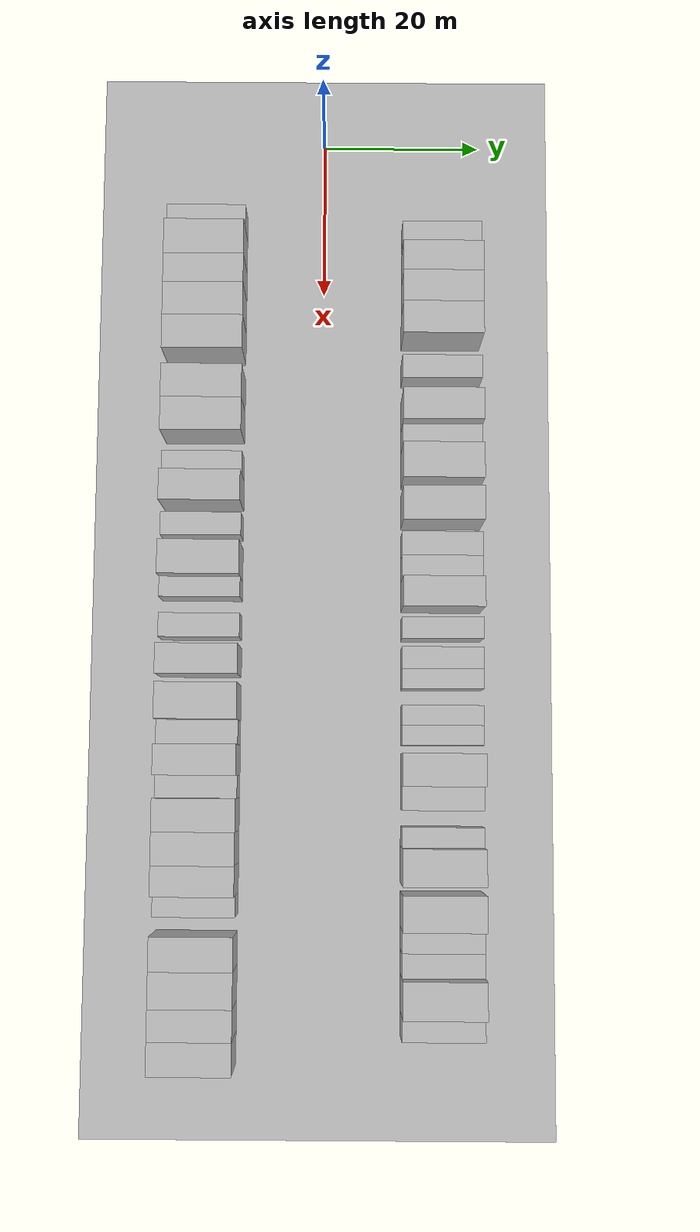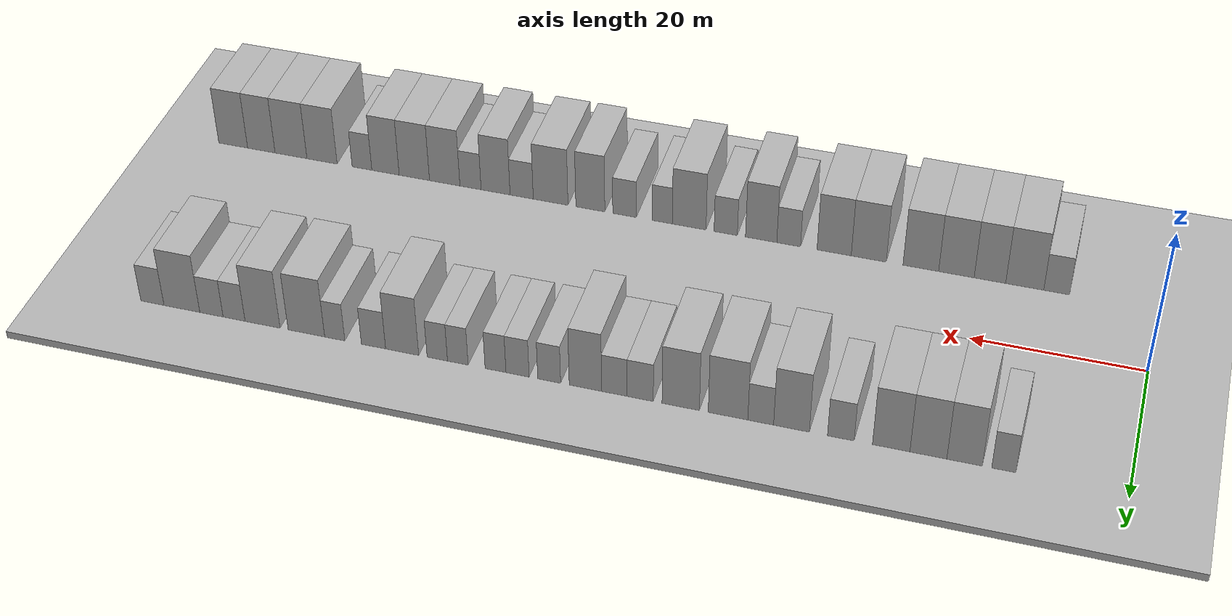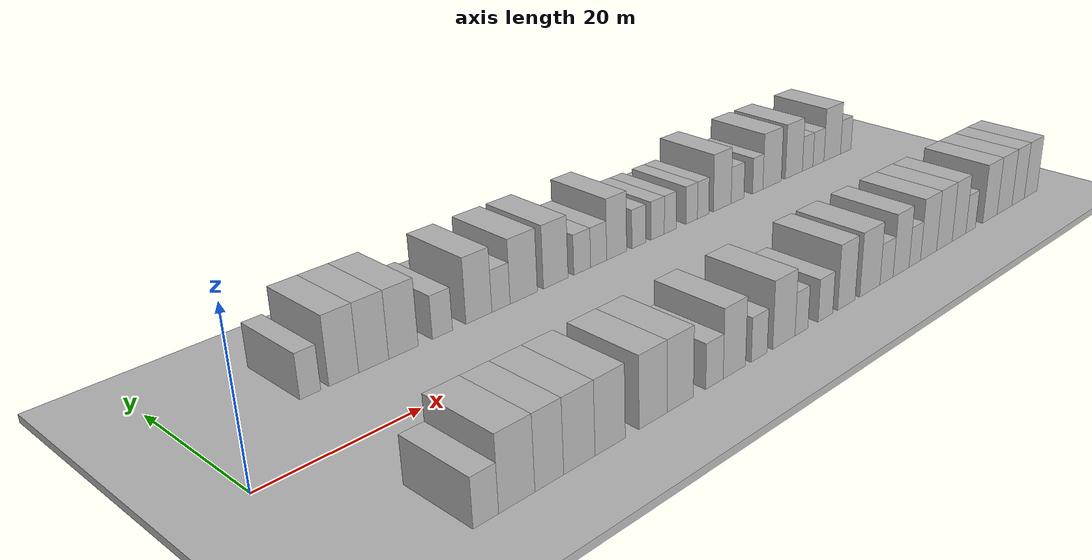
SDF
<sdf version="1.6">
 <world name="default">
  <include><name>ground_plane_1</name><uri>model://HANNAS_ground_plane</uri></include>
  <include>
   <name>ground_plane_2</name>
   <uri>model://HANNAS_ground_plane</uri>
   <pose>100 0 0  0 0 0</pose>
  </include>
  <model name="building_1">
   <static>1</static>
   <pose>13.2862 15.0000 0 0.000000 0.000000 1.570796</pose>
   <link name="link">
    <pose>0 0 3.00 0 0 0</pose>
    <collision name="collision"><geometry><box><size>10.0000 2.5724 6.0000</size></box></geometry></collision>
    <visual name="visual">
     <cast_shadows>0</cast_shadows>
     <geometry><box><size>10.0000 2.5724 6.0000</size></box></geometry>
     <material>
      <script>
       <uri>model://HANNAS_wall/materials/scripts</uri>
       <uri>model://HANNAS_wall/materials/textures</uri>
       <name>vrc/HANNAS_wall</name>
      </script>
     </material>
    </visual>
   </link>
  </model>
  <model name="building_2">
   <static>1</static>
   <pose>17.4752 15.0000 0 0.000000 0.000000 1.570796</pose>
   <link name="link">
    <pose>0 0 4.50 0 0 0</pose>
    <collision name="collision"><geometry><box><size>10.0000 3.8055 9.0000</size></box></geometry></collision>
    <visual name="visual">
     <cast_shadows>0</cast_shadows>
     <geometry><box><size>10.0000 3.8055 9.0000</size></box></geometry>
     <material>
      <script>
       <uri>model://HANNAS_wall/materials/scripts</uri>
       <uri>model://HANNAS_wall/materials/textures</uri>
       <name>vrc/HANNAS_wall</name>
      </script>
     </material>
    </visual>
   </link>
  </model>
  <model name="building_3">
   <static>1</static>
   <pose>21.3710 15.0000 0 0.000000 0.000000 1.570796</pose>
   <link name="link">
    <pose>0 0 4.50 0 0 0</pose>
    <collision name="collision"><geometry><box><size>10.0000 3.9862 9.0000</size></box></geometry></collision>
    <visual name="visual">
     <cast_shadows>0</cast_shadows>
     <geometry><box><size>10.0000 3.9862 9.0000</size></box></geometry>
     <material>
      <script>
       <uri>model://HANNAS_wall/materials/scripts</uri>
       <uri>model://HANNAS_wall/materials/textures</uri>
       <name>vrc/HANNAS_wall</name>
      </script>
     </material>
    </visual>
   </link>
  </model>
  <model name="building_4">
   <static>1</static>
   <pose>25.3962 15.0000 0 0.000000 0.000000 1.570796</pose>
   <link name="link">
    <pose>0 0 4.50 0 0 0</pose>
    <collision name="collision"><geometry><box><size>10.0000 4.0641 9.0000</size></box></geometry></collision>
    <visual name="visual">
     <cast_shadows>0</cast_shadows>
     <geometry><box><size>10.0000 4.0641 9.0000</size></box></geometry>
     <material>
      <script>
       <uri>model://HANNAS_wall/materials/scripts</uri>
       <uri>model://HANNAS_wall/materials/textures</uri>
       <name>vrc/HANNAS_wall</name>
      </script>
     </material>
    </visual>
   </link>
  </model>
  <model name="building_5">
   <static>1</static>
   <pose>30.8911 15.0000 0 0.000000 0.000000 1.570796</pose>
   <link name="link">
    <pose>0 0 3.00 0 0 0</pose>
    <collision name="collision"><geometry><box><size>10.0000 2.9257 6.0000</size></box></geometry></collision>
    <visual name="visual">
     <cast_shadows>0</cast_shadows>
     <geometry><box><size>10.0000 2.9257 6.0000</size></box></geometry>
     <material>
      <script>
       <uri>model://HANNAS_wall/materials/scripts</uri>
       <uri>model://HANNAS_wall/materials/textures</uri>
       <name>vrc/HANNAS_wall</name>
      </script>
     </material>
    </visual>
   </link>
  </model>
  <model name="building_6">
   <static>1</static>
   <pose>36.3340 15.0000 0 0.000000 0.000000 1.570796</pose>
   <link name="link">
    <pose>0 0 4.50 0 0 0</pose>
    <collision name="collision"><geometry><box><size>10.0000 3.9601 9.0000</size></box></geometry></collision>
    <visual name="visual">
     <cast_shadows>0</cast_shadows>
     <geometry><box><size>10.0000 3.9601 9.0000</size></box></geometry>
     <material>
      <script>
       <uri>model://HANNAS_wall/materials/scripts</uri>
       <uri>model://HANNAS_wall/materials/textures</uri>
       <name>vrc/HANNAS_wall</name>
      </script>
     </material>
    </visual>
   </link>
  </model>
  <model name="building_7">
   <static>1</static>
   <pose>39.7516 15.0000 0 0.000000 0.000000 1.570796</pose>
   <link name="link">
    <pose>0 0 3.00 0 0 0</pose>
    <collision name="collision"><geometry><box><size>10.0000 2.8751 6.0000</size></box></geometry></collision>
    <visual name="visual">
     <cast_shadows>0</cast_shadows>
     <geometry><box><size>10.0000 2.8751 6.0000</size></box></geometry>
     <material>
      <script>
       <uri>model://HANNAS_wall/materials/scripts</uri>
       <uri>model://HANNAS_wall/materials/textures</uri>
       <name>vrc/HANNAS_wall</name>
      </script>
     </material>
    </visual>
   </link>
  </model>
  <model name="building_8">
   <static>1</static>
   <pose>43.4057 15.0000 0 0.000000 0.000000 1.570796</pose>
   <link name="link">
    <pose>0 0 4.50 0 0 0</pose>
    <collision name="collision"><geometry><box><size>10.0000 4.4330 9.0000</size></box></geometry></collision>
    <visual name="visual">
     <cast_shadows>0</cast_shadows>
     <geometry><box><size>10.0000 4.4330 9.0000</size></box></geometry>
     <material>
      <script>
       <uri>model://HANNAS_wall/materials/scripts</uri>
       <uri>model://HANNAS_wall/materials/textures</uri>
       <name>vrc/HANNAS_wall</name>
      </script>
     </material>
    </visual>
   </link>
  </model>
  <model name="building_9">
   <static>1</static>
   <pose>48.7348 15.0000 0 0.000000 0.000000 1.570796</pose>
   <link name="link">
    <pose>0 0 4.50 0 0 0</pose>
    <collision name="collision"><geometry><box><size>10.0000 4.2253 9.0000</size></box></geometry></collision>
    <visual name="visual">
     <cast_shadows>0</cast_shadows>
     <geometry><box><size>10.0000 4.2253 9.0000</size></box></geometry>
     <material>
      <script>
       <uri>model://HANNAS_wall/materials/scripts</uri>
       <uri>model://HANNAS_wall/materials/textures</uri>
       <name>vrc/HANNAS_wall</name>
      </script>
     </material>
    </visual>
   </link>
  </model>
  <model name="building_10">
   <static>1</static>
   <pose>53.3366 15.0000 0 0.000000 0.000000 1.570796</pose>
   <link name="link">
    <pose>0 0 3.00 0 0 0</pose>
    <collision name="collision"><geometry><box><size>10.0000 2.9783 6.0000</size></box></geometry></collision>
    <visual name="visual">
     <cast_shadows>0</cast_shadows>
     <geometry><box><size>10.0000 2.9783 6.0000</size></box></geometry>
     <material>
      <script>
       <uri>model://HANNAS_wall/materials/scripts</uri>
       <uri>model://HANNAS_wall/materials/textures</uri>
       <name>vrc/HANNAS_wall</name>
      </script>
     </material>
    </visual>
   </link>
  </model>
  <model name="building_11">
   <static>1</static>
   <pose>56.2876 15.0000 0 0.000000 0.000000 1.570796</pose>
   <link name="link">
    <pose>0 0 3.00 0 0 0</pose>
    <collision name="collision"><geometry><box><size>10.0000 2.9236 6.0000</size></box></geometry></collision>
    <visual name="visual">
     <cast_shadows>0</cast_shadows>
     <geometry><box><size>10.0000 2.9236 6.0000</size></box></geometry>
     <material>
      <script>
       <uri>model://HANNAS_wall/materials/scripts</uri>
       <uri>model://HANNAS_wall/materials/textures</uri>
       <name>vrc/HANNAS_wall</name>
      </script>
     </material>
    </visual>
   </link>
  </model>
  <model name="building_12">
   <static>1</static>
   <pose>59.6168 15.0000 0 0.000000 0.000000 1.570796</pose>
   <link name="link">
    <pose>0 0 4.50 0 0 0</pose>
    <collision name="collision"><geometry><box><size>10.0000 3.7350 9.0000</size></box></geometry></collision>
    <visual name="visual">
     <cast_shadows>0</cast_shadows>
     <geometry><box><size>10.0000 3.7350 9.0000</size></box></geometry>
     <material>
      <script>
       <uri>model://HANNAS_wall/materials/scripts</uri>
       <uri>model://HANNAS_wall/materials/textures</uri>
       <name>vrc/HANNAS_wall</name>
      </script>
     </material>
    </visual>
   </link>
  </model>
  <model name="building_13">
   <static>1</static>
   <pose>63.8142 15.0000 0 0.000000 0.000000 1.570796</pose>
   <link name="link">
    <pose>0 0 3.00 0 0 0</pose>
    <collision name="collision"><geometry><box><size>10.0000 2.6598 6.0000</size></box></geometry></collision>
    <visual name="visual">
     <cast_shadows>0</cast_shadows>
     <geometry><box><size>10.0000 2.6598 6.0000</size></box></geometry>
     <material>
      <script>
       <uri>model://HANNAS_wall/materials/scripts</uri>
       <uri>model://HANNAS_wall/materials/textures</uri>
       <name>vrc/HANNAS_wall</name>
      </script>
     </material>
    </visual>
   </link>
  </model>
  <model name="building_14">
   <static>1</static>
   <pose>67.4996 15.0000 0 0.000000 0.000000 1.570796</pose>
   <link name="link">
    <pose>0 0 3.00 0 0 0</pose>
    <collision name="collision"><geometry><box><size>10.0000 2.7109 6.0000</size></box></geometry></collision>
    <visual name="visual">
     <cast_shadows>0</cast_shadows>
     <geometry><box><size>10.0000 2.7109 6.0000</size></box></geometry>
     <material>
      <script>
       <uri>model://HANNAS_wall/materials/scripts</uri>
       <uri>model://HANNAS_wall/materials/textures</uri>
       <name>vrc/HANNAS_wall</name>
      </script>
     </material>
    </visual>
   </link>
  </model>
  <model name="building_15">
   <static>1</static>
   <pose>70.0767 15.0000 0 0.000000 0.000000 1.570796</pose>
   <link name="link">
    <pose>0 0 3.00 0 0 0</pose>
    <collision name="collision"><geometry><box><size>10.0000 2.4434 6.0000</size></box></geometry></collision>
    <visual name="visual">
     <cast_shadows>0</cast_shadows>
     <geometry><box><size>10.0000 2.4434 6.0000</size></box></geometry>
     <material>
      <script>
       <uri>model://HANNAS_wall/materials/scripts</uri>
       <uri>model://HANNAS_wall/materials/textures</uri>
       <name>vrc/HANNAS_wall</name>
      </script>
     </material>
    </visual>
   </link>
  </model>
  <model name="building_16">
   <static>1</static>
   <pose>74.5183 15.0000 0 0.000000 0.000000 1.570796</pose>
   <link name="link">
    <pose>0 0 3.00 0 0 0</pose>
    <collision name="collision"><geometry><box><size>10.0000 2.4397 6.0000</size></box></geometry></collision>
    <visual name="visual">
     <cast_shadows>0</cast_shadows>
     <geometry><box><size>10.0000 2.4397 6.0000</size></box></geometry>
     <material>
      <script>
       <uri>model://HANNAS_wall/materials/scripts</uri>
       <uri>model://HANNAS_wall/materials/textures</uri>
       <name>vrc/HANNAS_wall</name>
      </script>
     </material>
    </visual>
   </link>
  </model>
  <model name="building_17">
   <static>1</static>
   <pose>76.9490 15.0000 0 0.000000 0.000000 1.570796</pose>
   <link name="link">
    <pose>0 0 3.00 0 0 0</pose>
    <collision name="collision"><geometry><box><size>10.0000 2.4216 6.0000</size></box></geometry></collision>
    <visual name="visual">
     <cast_shadows>0</cast_shadows>
     <geometry><box><size>10.0000 2.4216 6.0000</size></box></geometry>
     <material>
      <script>
       <uri>model://HANNAS_wall/materials/scripts</uri>
       <uri>model://HANNAS_wall/materials/textures</uri>
       <name>vrc/HANNAS_wall</name>
      </script>
     </material>
    </visual>
   </link>
  </model>
  <model name="building_18">
   <static>1</static>
   <pose>81.1411 15.0000 0 0.000000 0.000000 1.570796</pose>
   <link name="link">
    <pose>0 0 4.50 0 0 0</pose>
    <collision name="collision"><geometry><box><size>10.0000 3.9626 9.0000</size></box></geometry></collision>
    <visual name="visual">
     <cast_shadows>0</cast_shadows>
     <geometry><box><size>10.0000 3.9626 9.0000</size></box></geometry>
     <material>
      <script>
       <uri>model://HANNAS_wall/materials/scripts</uri>
       <uri>model://HANNAS_wall/materials/textures</uri>
       <name>vrc/HANNAS_wall</name>
      </script>
     </material>
    </visual>
   </link>
  </model>
  <model name="building_19">
   <static>1</static>
   <pose>84.5773 15.0000 0 0.000000 0.000000 1.570796</pose>
   <link name="link">
    <pose>0 0 3.00 0 0 0</pose>
    <collision name="collision"><geometry><box><size>10.0000 2.9098 6.0000</size></box></geometry></collision>
    <visual name="visual">
     <cast_shadows>0</cast_shadows>
     <geometry><box><size>10.0000 2.9098 6.0000</size></box></geometry>
     <material>
      <script>
       <uri>model://HANNAS_wall/materials/scripts</uri>
       <uri>model://HANNAS_wall/materials/textures</uri>
       <name>vrc/HANNAS_wall</name>
      </script>
     </material>
    </visual>
   </link>
  </model>
  <model name="building_20">
   <static>1</static>
   <pose>89.2566 15.0000 0 0.000000 0.000000 1.570796</pose>
   <link name="link">
    <pose>0 0 3.00 0 0 0</pose>
    <collision name="collision"><geometry><box><size>10.0000 2.4487 6.0000</size></box></geometry></collision>
    <visual name="visual">
     <cast_shadows>0</cast_shadows>
     <geometry><box><size>10.0000 2.4487 6.0000</size></box></geometry>
     <material>
      <script>
       <uri>model://HANNAS_wall/materials/scripts</uri>
       <uri>model://HANNAS_wall/materials/textures</uri>
       <name>vrc/HANNAS_wall</name>
      </script>
     </material>
    </visual>
   </link>
  </model>
  <model name="building_21">
   <static>1</static>
   <pose>92.7052 15.0000 0 0.000000 0.000000 1.570796</pose>
   <link name="link">
    <pose>0 0 4.50 0 0 0</pose>
    <collision name="collision"><geometry><box><size>10.0000 4.4486 9.0000</size></box></geometry></collision>
    <visual name="visual">
     <cast_shadows>0</cast_shadows>
     <geometry><box><size>10.0000 4.4486 9.0000</size></box></geometry>
     <material>
      <script>
       <uri>model://HANNAS_wall/materials/scripts</uri>
       <uri>model://HANNAS_wall/materials/textures</uri>
       <name>vrc/HANNAS_wall</name>
      </script>
     </material>
    </visual>
   </link>
  </model>
  <model name="building_22">
   <static>1</static>
   <pose>98.0822 15.0000 0 0.000000 0.000000 1.570796</pose>
   <link name="link">
    <pose>0 0 4.50 0 0 0</pose>
    <collision name="collision"><geometry><box><size>10.0000 4.3055 9.0000</size></box></geometry></collision>
    <visual name="visual">
     <cast_shadows>0</cast_shadows>
     <geometry><box><size>10.0000 4.3055 9.0000</size></box></geometry>
     <material>
      <script>
       <uri>model://HANNAS_wall/materials/scripts</uri>
       <uri>model://HANNAS_wall/materials/textures</uri>
       <name>vrc/HANNAS_wall</name>
      </script>
     </material>
    </visual>
   </link>
  </model>
  <model name="building_23">
   <static>1</static>
   <pose>101.5895 15.0000 0 0.000000 0.000000 1.570796</pose>
   <link name="link">
    <pose>0 0 3.00 0 0 0</pose>
    <collision name="collision"><geometry><box><size>10.0000 2.7089 6.0000</size></box></geometry></collision>
    <visual name="visual">
     <cast_shadows>0</cast_shadows>
     <geometry><box><size>10.0000 2.7089 6.0000</size></box></geometry>
     <material>
      <script>
       <uri>model://HANNAS_wall/materials/scripts</uri>
       <uri>model://HANNAS_wall/materials/textures</uri>
       <name>vrc/HANNAS_wall</name>
      </script>
     </material>
    </visual>
   </link>
  </model>
  <model name="building_24">
   <static>1</static>
   <pose>104.3950 15.0000 0 0.000000 0.000000 1.570796</pose>
   <link name="link">
    <pose>0 0 3.00 0 0 0</pose>
    <collision name="collision"><geometry><box><size>10.0000 2.9022 6.0000</size></box></geometry></collision>
    <visual name="visual">
     <cast_shadows>0</cast_shadows>
     <geometry><box><size>10.0000 2.9022 6.0000</size></box></geometry>
     <material>
      <script>
       <uri>model://HANNAS_wall/materials/scripts</uri>
       <uri>model://HANNAS_wall/materials/textures</uri>
       <name>vrc/HANNAS_wall</name>
      </script>
     </material>
    </visual>
   </link>
  </model>
  <model name="building_25">
   <static>1</static>
   <pose>108.0881 15.0000 0 0.000000 0.000000 1.570796</pose>
   <link name="link">
    <pose>0 0 4.50 0 0 0</pose>
    <collision name="collision"><geometry><box><size>10.0000 4.4841 9.0000</size></box></geometry></collision>
    <visual name="visual">
     <cast_shadows>0</cast_shadows>
     <geometry><box><size>10.0000 4.4841 9.0000</size></box></geometry>
     <material>
      <script>
       <uri>model://HANNAS_wall/materials/scripts</uri>
       <uri>model://HANNAS_wall/materials/textures</uri>
       <name>vrc/HANNAS_wall</name>
      </script>
     </material>
    </visual>
   </link>
  </model>
  <model name="building_26">
   <static>1</static>
   <pose>111.7850 15.0000 0 0.000000 0.000000 1.570796</pose>
   <link name="link">
    <pose>0 0 3.00 0 0 0</pose>
    <collision name="collision"><geometry><box><size>10.0000 2.9097 6.0000</size></box></geometry></collision>
    <visual name="visual">
     <cast_shadows>0</cast_shadows>
     <geometry><box><size>10.0000 2.9097 6.0000</size></box></geometry>
     <material>
      <script>
       <uri>model://HANNAS_wall/materials/scripts</uri>
       <uri>model://HANNAS_wall/materials/textures</uri>
       <name>vrc/HANNAS_wall</name>
      </script>
     </material>
    </visual>
   </link>
  </model>
  <model name="building_54">
   <static>1</static>
   <pose>11.4987 -15.0000 0 0.000000 0.000000 1.570796</pose>
   <link name="link">
    <pose>0 0 3.00 0 0 0</pose>
    <collision name="collision"><geometry><box><size>10.0000 2.9974 6.0000</size></box></geometry></collision>
    <visual name="visual">
     <cast_shadows>0</cast_shadows>
     <geometry><box><size>10.0000 2.9974 6.0000</size></box></geometry>
     <material>
      <script>
       <uri>model://HANNAS_wall/materials/scripts</uri>
       <uri>model://HANNAS_wall/materials/textures</uri>
       <name>vrc/HANNAS_wall</name>
      </script>
     </material>
    </visual>
   </link>
  </model>
  <model name="building_55">
   <static>1</static>
   <pose>15.2125 -15.0000 0 0.000000 0.000000 1.570796</pose>
   <link name="link">
    <pose>0 0 4.50 0 0 0</pose>
    <collision name="collision"><geometry><box><size>10.0000 4.4302 9.0000</size></box></geometry></collision>
    <visual name="visual">
     <cast_shadows>0</cast_shadows>
     <geometry><box><size>10.0000 4.4302 9.0000</size></box></geometry>
     <material>
      <script>
       <uri>model://HANNAS_wall/materials/scripts</uri>
       <uri>model://HANNAS_wall/materials/textures</uri>
       <name>vrc/HANNAS_wall</name>
      </script>
     </material>
    </visual>
   </link>
  </model>
  <model name="building_56">
   <static>1</static>
   <pose>19.2752 -15.0000 0 0.000000 0.000000 1.570796</pose>
   <link name="link">
    <pose>0 0 4.50 0 0 0</pose>
    <collision name="collision"><geometry><box><size>10.0000 3.6952 9.0000</size></box></geometry></collision>
    <visual name="visual">
     <cast_shadows>0</cast_shadows>
     <geometry><box><size>10.0000 3.6952 9.0000</size></box></geometry>
     <material>
      <script>
       <uri>model://HANNAS_wall/materials/scripts</uri>
       <uri>model://HANNAS_wall/materials/textures</uri>
       <name>vrc/HANNAS_wall</name>
      </script>
     </material>
    </visual>
   </link>
  </model>
  <model name="building_57">
   <static>1</static>
   <pose>23.2187 -15.0000 0 0.000000 0.000000 1.570796</pose>
   <link name="link">
    <pose>0 0 4.50 0 0 0</pose>
    <collision name="collision"><geometry><box><size>10.0000 4.1918 9.0000</size></box></geometry></collision>
    <visual name="visual">
     <cast_shadows>0</cast_shadows>
     <geometry><box><size>10.0000 4.1918 9.0000</size></box></geometry>
     <material>
      <script>
       <uri>model://HANNAS_wall/materials/scripts</uri>
       <uri>model://HANNAS_wall/materials/textures</uri>
       <name>vrc/HANNAS_wall</name>
      </script>
     </material>
    </visual>
   </link>
  </model>
  <model name="building_58">
   <static>1</static>
   <pose>27.4327 -15.0000 0 0.000000 0.000000 1.570796</pose>
   <link name="link">
    <pose>0 0 4.50 0 0 0</pose>
    <collision name="collision"><geometry><box><size>10.0000 4.2362 9.0000</size></box></geometry></collision>
    <visual name="visual">
     <cast_shadows>0</cast_shadows>
     <geometry><box><size>10.0000 4.2362 9.0000</size></box></geometry>
     <material>
      <script>
       <uri>model://HANNAS_wall/materials/scripts</uri>
       <uri>model://HANNAS_wall/materials/textures</uri>
       <name>vrc/HANNAS_wall</name>
      </script>
     </material>
    </visual>
   </link>
  </model>
  <model name="building_59">
   <static>1</static>
   <pose>33.6524 -15.0000 0 0.000000 0.000000 1.570796</pose>
   <link name="link">
    <pose>0 0 4.50 0 0 0</pose>
    <collision name="collision"><geometry><box><size>10.0000 4.2032 9.0000</size></box></geometry></collision>
    <visual name="visual">
     <cast_shadows>0</cast_shadows>
     <geometry><box><size>10.0000 4.2032 9.0000</size></box></geometry>
     <material>
      <script>
       <uri>model://HANNAS_wall/materials/scripts</uri>
       <uri>model://HANNAS_wall/materials/textures</uri>
       <name>vrc/HANNAS_wall</name>
      </script>
     </material>
    </visual>
   </link>
  </model>
  <model name="building_60">
   <static>1</static>
   <pose>37.8197 -15.0000 0 0.000000 0.000000 1.570796</pose>
   <link name="link">
    <pose>0 0 4.50 0 0 0</pose>
    <collision name="collision"><geometry><box><size>10.0000 4.1314 9.0000</size></box></geometry></collision>
    <visual name="visual">
     <cast_shadows>0</cast_shadows>
     <geometry><box><size>10.0000 4.1314 9.0000</size></box></geometry>
     <material>
      <script>
       <uri>model://HANNAS_wall/materials/scripts</uri>
       <uri>model://HANNAS_wall/materials/textures</uri>
       <name>vrc/HANNAS_wall</name>
      </script>
     </material>
    </visual>
   </link>
  </model>
  <model name="building_61">
   <static>1</static>
   <pose>43.3327 -15.0000 0 0.000000 0.000000 1.570796</pose>
   <link name="link">
    <pose>0 0 3.00 0 0 0</pose>
    <collision name="collision"><geometry><box><size>10.0000 2.8946 6.0000</size></box></geometry></collision>
    <visual name="visual">
     <cast_shadows>0</cast_shadows>
     <geometry><box><size>10.0000 2.8946 6.0000</size></box></geometry>
     <material>
      <script>
       <uri>model://HANNAS_wall/materials/scripts</uri>
       <uri>model://HANNAS_wall/materials/textures</uri>
       <name>vrc/HANNAS_wall</name>
      </script>
     </material>
    </visual>
   </link>
  </model>
  <model name="building_62">
   <static>1</static>
   <pose>46.6987 -15.0000 0 0.000000 0.000000 1.570796</pose>
   <link name="link">
    <pose>0 0 4.50 0 0 0</pose>
    <collision name="collision"><geometry><box><size>10.0000 3.8375 9.0000</size></box></geometry></collision>
    <visual name="visual">
     <cast_shadows>0</cast_shadows>
     <geometry><box><size>10.0000 3.8375 9.0000</size></box></geometry>
     <material>
      <script>
       <uri>model://HANNAS_wall/materials/scripts</uri>
       <uri>model://HANNAS_wall/materials/textures</uri>
       <name>vrc/HANNAS_wall</name>
      </script>
     </material>
    </visual>
   </link>
  </model>
  <model name="building_63">
   <static>1</static>
   <pose>51.0510 -15.0000 0 0.000000 0.000000 1.570796</pose>
   <link name="link">
    <pose>0 0 3.00 0 0 0</pose>
    <collision name="collision"><geometry><box><size>10.0000 2.8671 6.0000</size></box></geometry></collision>
    <visual name="visual">
     <cast_shadows>0</cast_shadows>
     <geometry><box><size>10.0000 2.8671 6.0000</size></box></geometry>
     <material>
      <script>
       <uri>model://HANNAS_wall/materials/scripts</uri>
       <uri>model://HANNAS_wall/materials/textures</uri>
       <name>vrc/HANNAS_wall</name>
      </script>
     </material>
    </visual>
   </link>
  </model>
  <model name="building_64">
   <static>1</static>
   <pose>55.5803 -15.0000 0 0.000000 0.000000 1.570796</pose>
   <link name="link">
    <pose>0 0 4.50 0 0 0</pose>
    <collision name="collision"><geometry><box><size>10.0000 4.1915 9.0000</size></box></geometry></collision>
    <visual name="visual">
     <cast_shadows>0</cast_shadows>
     <geometry><box><size>10.0000 4.1915 9.0000</size></box></geometry>
     <material>
      <script>
       <uri>model://HANNAS_wall/materials/scripts</uri>
       <uri>model://HANNAS_wall/materials/textures</uri>
       <name>vrc/HANNAS_wall</name>
      </script>
     </material>
    </visual>
   </link>
  </model>
  <model name="building_65">
   <static>1</static>
   <pose>58.9256 -15.0000 0 0.000000 0.000000 1.570796</pose>
   <link name="link">
    <pose>0 0 3.00 0 0 0</pose>
    <collision name="collision"><geometry><box><size>10.0000 2.4991 6.0000</size></box></geometry></collision>
    <visual name="visual">
     <cast_shadows>0</cast_shadows>
     <geometry><box><size>10.0000 2.4991 6.0000</size></box></geometry>
     <material>
      <script>
       <uri>model://HANNAS_wall/materials/scripts</uri>
       <uri>model://HANNAS_wall/materials/textures</uri>
       <name>vrc/HANNAS_wall</name>
      </script>
     </material>
    </visual>
   </link>
  </model>
  <model name="building_66">
   <static>1</static>
   <pose>63.6565 -15.0000 0 0.000000 0.000000 1.570796</pose>
   <link name="link">
    <pose>0 0 3.00 0 0 0</pose>
    <collision name="collision"><geometry><box><size>10.0000 2.9627 6.0000</size></box></geometry></collision>
    <visual name="visual">
     <cast_shadows>0</cast_shadows>
     <geometry><box><size>10.0000 2.9627 6.0000</size></box></geometry>
     <material>
      <script>
       <uri>model://HANNAS_wall/materials/scripts</uri>
       <uri>model://HANNAS_wall/materials/textures</uri>
       <name>vrc/HANNAS_wall</name>
      </script>
     </material>
    </visual>
   </link>
  </model>
  <model name="building_67">
   <static>1</static>
   <pose>67.9751 -15.0000 0 0.000000 0.000000 1.570796</pose>
   <link name="link">
    <pose>0 0 4.50 0 0 0</pose>
    <collision name="collision"><geometry><box><size>10.0000 3.6743 9.0000</size></box></geometry></collision>
    <visual name="visual">
     <cast_shadows>0</cast_shadows>
     <geometry><box><size>10.0000 3.6743 9.0000</size></box></geometry>
     <material>
      <script>
       <uri>model://HANNAS_wall/materials/scripts</uri>
       <uri>model://HANNAS_wall/materials/textures</uri>
       <name>vrc/HANNAS_wall</name>
      </script>
     </material>
    </visual>
   </link>
  </model>
  <model name="building_68">
   <static>1</static>
   <pose>73.0299 -15.0000 0 0.000000 0.000000 1.570796</pose>
   <link name="link">
    <pose>0 0 4.50 0 0 0</pose>
    <collision name="collision"><geometry><box><size>10.0000 4.4352 9.0000</size></box></geometry></collision>
    <visual name="visual">
     <cast_shadows>0</cast_shadows>
     <geometry><box><size>10.0000 4.4352 9.0000</size></box></geometry>
     <material>
      <script>
       <uri>model://HANNAS_wall/materials/scripts</uri>
       <uri>model://HANNAS_wall/materials/textures</uri>
       <name>vrc/HANNAS_wall</name>
      </script>
     </material>
    </visual>
   </link>
  </model>
  <model name="building_69">
   <static>1</static>
   <pose>76.7383 -15.0000 0 0.000000 0.000000 1.570796</pose>
   <link name="link">
    <pose>0 0 3.00 0 0 0</pose>
    <collision name="collision"><geometry><box><size>10.0000 2.9817 6.0000</size></box></geometry></collision>
    <visual name="visual">
     <cast_shadows>0</cast_shadows>
     <geometry><box><size>10.0000 2.9817 6.0000</size></box></geometry>
     <material>
      <script>
       <uri>model://HANNAS_wall/materials/scripts</uri>
       <uri>model://HANNAS_wall/materials/textures</uri>
       <name>vrc/HANNAS_wall</name>
      </script>
     </material>
    </visual>
   </link>
  </model>
  <model name="building_70">
   <static>1</static>
   <pose>80.0968 -15.0000 0 0.000000 0.000000 1.570796</pose>
   <link name="link">
    <pose>0 0 4.50 0 0 0</pose>
    <collision name="collision"><geometry><box><size>10.0000 3.7353 9.0000</size></box></geometry></collision>
    <visual name="visual">
     <cast_shadows>0</cast_shadows>
     <geometry><box><size>10.0000 3.7353 9.0000</size></box></geometry>
     <material>
      <script>
       <uri>model://HANNAS_wall/materials/scripts</uri>
       <uri>model://HANNAS_wall/materials/textures</uri>
       <name>vrc/HANNAS_wall</name>
      </script>
     </material>
    </visual>
   </link>
  </model>
  <model name="building_71">
   <static>1</static>
   <pose>83.3392 -15.0000 0 0.000000 0.000000 1.570796</pose>
   <link name="link">
    <pose>0 0 3.00 0 0 0</pose>
    <collision name="collision"><geometry><box><size>10.0000 2.7496 6.0000</size></box></geometry></collision>
    <visual name="visual">
     <cast_shadows>0</cast_shadows>
     <geometry><box><size>10.0000 2.7496 6.0000</size></box></geometry>
     <material>
      <script>
       <uri>model://HANNAS_wall/materials/scripts</uri>
       <uri>model://HANNAS_wall/materials/textures</uri>
       <name>vrc/HANNAS_wall</name>
      </script>
     </material>
    </visual>
   </link>
  </model>
  <model name="building_72">
   <static>1</static>
   <pose>86.6978 -15.0000 0 0.000000 0.000000 1.570796</pose>
   <link name="link">
    <pose>0 0 4.50 0 0 0</pose>
    <collision name="collision"><geometry><box><size>10.0000 3.9677 9.0000</size></box></geometry></collision>
    <visual name="visual">
     <cast_shadows>0</cast_shadows>
     <geometry><box><size>10.0000 3.9677 9.0000</size></box></geometry>
     <material>
      <script>
       <uri>model://HANNAS_wall/materials/scripts</uri>
       <uri>model://HANNAS_wall/materials/textures</uri>
       <name>vrc/HANNAS_wall</name>
      </script>
     </material>
    </visual>
   </link>
  </model>
  <model name="building_73">
   <static>1</static>
   <pose>90.6678 -15.0000 0 0.000000 0.000000 1.570796</pose>
   <link name="link">
    <pose>0 0 4.50 0 0 0</pose>
    <collision name="collision"><geometry><box><size>10.0000 3.9723 9.0000</size></box></geometry></collision>
    <visual name="visual">
     <cast_shadows>0</cast_shadows>
     <geometry><box><size>10.0000 3.9723 9.0000</size></box></geometry>
     <material>
      <script>
       <uri>model://HANNAS_wall/materials/scripts</uri>
       <uri>model://HANNAS_wall/materials/textures</uri>
       <name>vrc/HANNAS_wall</name>
      </script>
     </material>
    </visual>
   </link>
  </model>
  <model name="building_74">
   <static>1</static>
   <pose>94.4598 -15.0000 0 0.000000 0.000000 1.570796</pose>
   <link name="link">
    <pose>0 0 4.50 0 0 0</pose>
    <collision name="collision"><geometry><box><size>10.0000 3.6118 9.0000</size></box></geometry></collision>
    <visual name="visual">
     <cast_shadows>0</cast_shadows>
     <geometry><box><size>10.0000 3.6118 9.0000</size></box></geometry>
     <material>
      <script>
       <uri>model://HANNAS_wall/materials/scripts</uri>
       <uri>model://HANNAS_wall/materials/textures</uri>
       <name>vrc/HANNAS_wall</name>
      </script>
     </material>
    </visual>
   </link>
  </model>
  <model name="building_75">
   <static>1</static>
   <pose>97.5690 -15.0000 0 0.000000 0.000000 1.570796</pose>
   <link name="link">
    <pose>0 0 3.00 0 0 0</pose>
    <collision name="collision"><geometry><box><size>10.0000 2.6066 6.0000</size></box></geometry></collision>
    <visual name="visual">
     <cast_shadows>0</cast_shadows>
     <geometry><box><size>10.0000 2.6066 6.0000</size></box></geometry>
     <material>
      <script>
       <uri>model://HANNAS_wall/materials/scripts</uri>
       <uri>model://HANNAS_wall/materials/textures</uri>
       <name>vrc/HANNAS_wall</name>
      </script>
     </material>
    </visual>
   </link>
  </model>
  <model name="building_76">
   <static>1</static>
   <pose>102.8953 -15.0000 0 0.000000 0.000000 1.570796</pose>
   <link name="link">
    <pose>0 0 4.50 0 0 0</pose>
    <collision name="collision"><geometry><box><size>10.0000 4.0461 9.0000</size></box></geometry></collision>
    <visual name="visual">
     <cast_shadows>0</cast_shadows>
     <geometry><box><size>10.0000 4.0461 9.0000</size></box></geometry>
     <material>
      <script>
       <uri>model://HANNAS_wall/materials/scripts</uri>
       <uri>model://HANNAS_wall/materials/textures</uri>
       <name>vrc/HANNAS_wall</name>
      </script>
     </material>
    </visual>
   </link>
  </model>
  <model name="building_77">
   <static>1</static>
   <pose>107.0592 -15.0000 0 0.000000 0.000000 1.570796</pose>
   <link name="link">
    <pose>0 0 4.50 0 0 0</pose>
    <collision name="collision"><geometry><box><size>10.0000 4.2816 9.0000</size></box></geometry></collision>
    <visual name="visual">
     <cast_shadows>0</cast_shadows>
     <geometry><box><size>10.0000 4.2816 9.0000</size></box></geometry>
     <material>
      <script>
       <uri>model://HANNAS_wall/materials/scripts</uri>
       <uri>model://HANNAS_wall/materials/textures</uri>
       <name>vrc/HANNAS_wall</name>
      </script>
     </material>
    </visual>
   </link>
  </model>
  <model name="building_78">
   <static>1</static>
   <pose>111.0587 -15.0000 0 0.000000 0.000000 1.570796</pose>
   <link name="link">
    <pose>0 0 4.50 0 0 0</pose>
    <collision name="collision"><geometry><box><size>10.0000 3.7176 9.0000</size></box></geometry></collision>
    <visual name="visual">
     <cast_shadows>0</cast_shadows>
     <geometry><box><size>10.0000 3.7176 9.0000</size></box></geometry>
     <material>
      <script>
       <uri>model://HANNAS_wall/materials/scripts</uri>
       <uri>model://HANNAS_wall/materials/textures</uri>
       <name>vrc/HANNAS_wall</name>
      </script>
     </material>
    </visual>
   </link>
  </model>
  <model name="building_79">
   <static>1</static>
   <pose>114.8772 -15.0000 0 0.000000 0.000000 1.570796</pose>
   <link name="link">
    <pose>0 0 4.50 0 0 0</pose>
    <collision name="collision"><geometry><box><size>10.0000 3.9193 9.0000</size></box></geometry></collision>
    <visual name="visual">
     <cast_shadows>0</cast_shadows>
     <geometry><box><size>10.0000 3.9193 9.0000</size></box></geometry>
     <material>
      <script>
       <uri>model://HANNAS_wall/materials/scripts</uri>
       <uri>model://HANNAS_wall/materials/textures</uri>
       <name>vrc/HANNAS_wall</name>
      </script>
     </material>
    </visual>
   </link>
  </model>
 </world>
</sdf>
